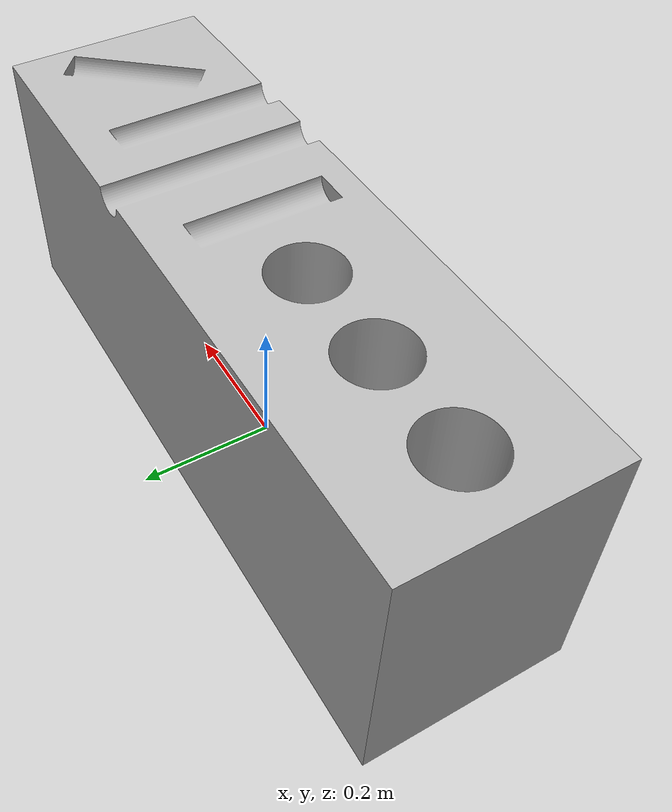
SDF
<?xml version="1.0" ?>
<sdf version="1.5">
  <model name="Playbox">
    <pose>0 0 0 0 0 0</pose>
    <static>true</static>
    <link name="link">
      <collision name="collision">
        <geometry>
          <mesh>
            <uri>model://playbox/meshes/playbox01.stl</uri>
            <scale>0.01 0.01 0.01</scale>
          </mesh>
        </geometry>
      </collision>
      <visual name="visual">
        <geometry>
          <mesh>
            <uri>model://playbox/meshes/playbox01.stl</uri>
            <scale>0.01 0.01 0.01</scale>
          </mesh>
        </geometry>
      </visual>
    </link>
  </model>
</sdf>
